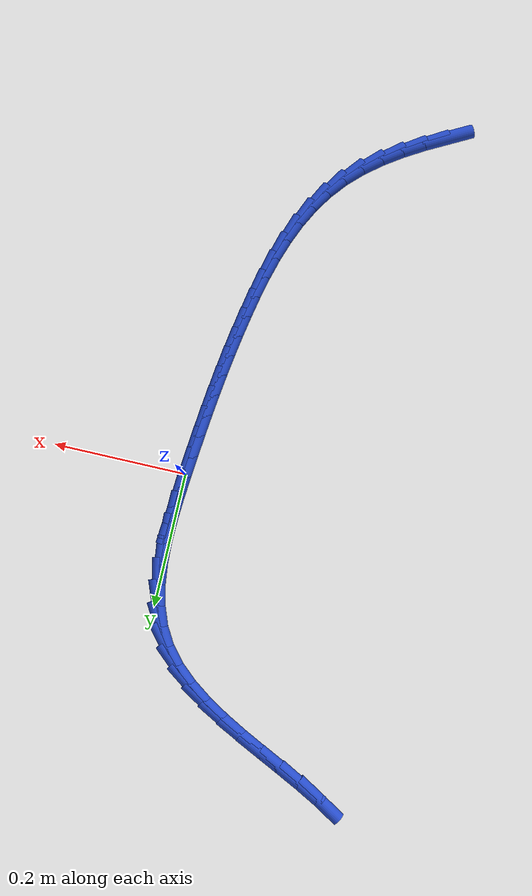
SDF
<sdf version="1.6">
 <world name="default">
  <model name="ground_plane">
   <static>1</static>
   <link name="link">
    <collision name="collision">
     <geometry><plane><normal>0 0 1</normal><size>100 100</size></plane></geometry>
     <surface><friction><ode><mu>100</mu><mu2>50</mu2></ode></friction></surface>
    </collision>
    <visual name="visual">
     <cast_shadows>0</cast_shadows>
     <geometry><plane><normal>0 0 1</normal><size>100 100</size></plane></geometry>
     <material>
      <script><uri>file://media/materials/scripts/gazebo.material</uri><name>Gazebo/WhiteGlow</name></script>
     </material>
    </visual>
   </link>
  </model>
  <model name="line">
   <link name="link_0">
    <pose>-3.469446951953614e-18 6.245004513516506e-17 0.01 0 1.57 1.4901229241210485</pose>
    <collision name="collision">
     <geometry><cylinder><radius>0.01</radius><length>0.08</length></cylinder></geometry>
    </collision>
    <visual name="visual">
     <material>
      <script><name>Gazebo/Blue</name><uri>file://media/materials/scripts/gazebo.material</uri></script>
     </material>
     <geometry><cylinder><radius>0.01</radius><length>0.08</length></cylinder></geometry>
    </visual>
   </link>
   <link name="link_1">
    <pose>0.0027077996021664143 0.033492113431842434 0.01 0 1.57 1.5123215696676704</pose>
    <collision name="collision">
     <geometry><cylinder><radius>0.01</radius><length>0.08</length></cylinder></geometry>
    </collision>
    <visual name="visual">
     <material>
      <script><name>Gazebo/Blue</name><uri>file://media/materials/scripts/gazebo.material</uri></script>
     </material>
     <geometry><cylinder><radius>0.01</radius><length>0.08</length></cylinder></geometry>
    </visual>
   </link>
   <link name="link_2">
    <pose>0.004687725133957794 0.0673130040705249 0.01 0 1.57 1.552191958306774</pose>
    <collision name="collision">
     <geometry><cylinder><radius>0.01</radius><length>0.08</length></cylinder></geometry>
    </collision>
    <visual name="visual">
     <material>
      <script><name>Gazebo/Blue</name><uri>file://media/materials/scripts/gazebo.material</uri></script>
     </material>
     <geometry><cylinder><radius>0.01</radius><length>0.08</length></cylinder></geometry>
    </visual>
   </link>
   <link name="link_3">
    <pose>0.005314771219777069 0.10101335458900262 0.01 0 1.57 -1.5300456229993817</pose>
    <collision name="collision">
     <geometry><cylinder><radius>0.01</radius><length>0.08</length></cylinder></geometry>
    </collision>
    <visual name="visual">
     <material>
      <script><name>Gazebo/Blue</name><uri>file://media/materials/scripts/gazebo.material</uri></script>
     </material>
     <geometry><cylinder><radius>0.01</radius><length>0.08</length></cylinder></geometry>
    </visual>
   </link>
   <link name="link_4">
    <pose>0.003963932484027174 0.13414384766023082 0.01 0 1.57 -1.4482872086285352</pose>
    <collision name="collision">
     <geometry><cylinder><radius>0.01</radius><length>0.08</length></cylinder></geometry>
    </collision>
    <visual name="visual">
     <material>
      <script><name>Gazebo/Blue</name><uri>file://media/materials/scripts/gazebo.material</uri></script>
     </material>
     <geometry><cylinder><radius>0.01</radius><length>0.08</length></cylinder></geometry>
    </visual>
   </link>
   <link name="link_5">
    <pose>1.0203551111035575e-05 0.16625516595716458 0.01 0 1.57 -1.34058564515871</pose>
    <collision name="collision">
     <geometry><cylinder><radius>0.01</radius><length>0.08</length></cylinder></geometry>
    </collision>
    <visual name="visual">
     <material>
      <script><name>Gazebo/Blue</name><uri>file://media/materials/scripts/gazebo.material</uri></script>
     </material>
     <geometry><cylinder><radius>0.01</radius><length>0.08</length></cylinder></geometry>
    </visual>
   </link>
   <link name="link_6">
    <pose>-0.00717142095456841 0.19689799215275902 0.01 0 1.57 -1.2040337244505515</pose>
    <collision name="collision">
     <geometry><cylinder><radius>0.01</radius><length>0.08</length></cylinder></geometry>
    </collision>
    <visual name="visual">
     <material>
      <script><name>Gazebo/Blue</name><uri>file://media/materials/scripts/gazebo.material</uri></script>
     </material>
     <geometry><cylinder><radius>0.01</radius><length>0.08</length></cylinder></geometry>
    </visual>
   </link>
   <link name="link_7">
    <pose>-0.018205946408608238 0.22562300891996945 0.01 0 1.57 -1.0388727572746694</pose>
    <collision name="collision">
     <geometry><cylinder><radius>0.01</radius><length>0.08</length></cylinder></geometry>
    </collision>
    <visual name="visual">
     <material>
      <script><name>Gazebo/Blue</name><uri>file://media/materials/scripts/gazebo.material</uri></script>
     </material>
     <geometry><cylinder><radius>0.01</radius><length>0.08</length></cylinder></geometry>
    </visual>
   </link>
   <link name="link_8">
    <pose>-0.0337178486407541 0.2519812085701402 0.01 0 1.57 -0.8640773350608283</pose>
    <collision name="collision">
     <geometry><cylinder><radius>0.01</radius><length>0.08</length></cylinder></geometry>
    </collision>
    <visual name="visual">
     <material>
      <script><name>Gazebo/Blue</name><uri>file://media/materials/scripts/gazebo.material</uri></script>
     </material>
     <geometry><cylinder><radius>0.01</radius><length>0.08</length></cylinder></geometry>
    </visual>
   </link>
   <link name="link_9">
    <pose>-0.0539898748152464 0.27572340050943794 0.01 0 1.57 -0.7207456461678292</pose>
    <collision name="collision">
     <geometry><cylinder><radius>0.01</radius><length>0.08</length></cylinder></geometry>
    </collision>
    <visual name="visual">
     <material>
      <script><name>Gazebo/Blue</name><uri>file://media/materials/scripts/gazebo.material</uri></script>
     </material>
     <geometry><cylinder><radius>0.01</radius><length>0.08</length></cylinder></geometry>
    </visual>
   </link>
   <link name="link_10">
    <pose>-0.07837571957989971 0.29714363383536285 0.01 0 1.57 -0.613045753282592</pose>
    <collision name="collision">
     <geometry><cylinder><radius>0.01</radius><length>0.08</length></cylinder></geometry>
    </collision>
    <visual name="visual">
     <material>
      <script><name>Gazebo/Blue</name><uri>file://media/materials/scripts/gazebo.material</uri></script>
     </material>
     <geometry><cylinder><radius>0.01</radius><length>0.08</length></cylinder></geometry>
    </visual>
   </link>
   <link name="link_11">
    <pose>-0.10607268852153606 0.3166274021479808 0.01 0 1.57 -0.5357706391768827</pose>
    <collision name="collision">
     <geometry><cylinder><radius>0.01</radius><length>0.08</length></cylinder></geometry>
    </collision>
    <visual name="visual">
     <material>
      <script><name>Gazebo/Blue</name><uri>file://media/materials/scripts/gazebo.material</uri></script>
     </material>
     <geometry><cylinder><radius>0.01</radius><length>0.08</length></cylinder></geometry>
    </visual>
   </link>
   <link name="link_12">
    <pose>-0.13627808722697748 0.3345601990473574 0.01 0 1.57 -0.4837902180100879</pose>
    <collision name="collision">
     <geometry><cylinder><radius>0.01</radius><length>0.08</length></cylinder></geometry>
    </collision>
    <visual name="visual">
     <material>
      <script><name>Gazebo/Blue</name><uri>file://media/materials/scripts/gazebo.material</uri></script>
     </material>
     <geometry><cylinder><radius>0.01</radius><length>0.08</length></cylinder></geometry>
    </visual>
   </link>
   <link name="link_13">
    <pose>-0.168189221283046 0.35132751813355845 0.01 0 1.57 -0.45336189439639357</pose>
    <collision name="collision">
     <geometry><cylinder><radius>0.01</radius><length>0.08</length></cylinder></geometry>
    </collision>
    <visual name="visual">
     <material>
      <script><name>Gazebo/Blue</name><uri>file://media/materials/scripts/gazebo.material</uri></script>
     </material>
     <geometry><cylinder><radius>0.01</radius><length>0.08</length></cylinder></geometry>
    </visual>
   </link>
   <link name="link_14">
    <pose>-0.20100339627656347 0.3673148530066496 0.01 0 1.57 -0.44241777368802937</pose>
    <collision name="collision">
     <geometry><cylinder><radius>0.01</radius><length>0.08</length></cylinder></geometry>
    </collision>
    <visual name="visual">
     <material>
      <script><name>Gazebo/Blue</name><uri>file://media/materials/scripts/gazebo.material</uri></script>
     </material>
     <geometry><cylinder><radius>0.01</radius><length>0.08</length></cylinder></geometry>
    </visual>
   </link>
   <link name="link_15">
    <pose>-0.23391791779435206 0.3829076972666967 0.01 0 1.57 -0.45059369855419107</pose>
    <collision name="collision">
     <geometry><cylinder><radius>0.01</radius><length>0.08</length></cylinder></geometry>
    </collision>
    <visual name="visual">
     <material>
      <script><name>Gazebo/Blue</name><uri>file://media/materials/scripts/gazebo.material</uri></script>
     </material>
     <geometry><cylinder><radius>0.01</radius><length>0.08</length></cylinder></geometry>
    </visual>
   </link>
   <link name="link_16">
    <pose>-0.2661300914232338 0.3984915445137655 0.01 0 1.57 -0.4793304913111755</pose>
    <collision name="collision">
     <geometry><cylinder><radius>0.01</radius><length>0.08</length></cylinder></geometry>
    </collision>
    <visual name="visual">
     <material>
      <script><name>Gazebo/Blue</name><uri>file://media/materials/scripts/gazebo.material</uri></script>
     </material>
     <geometry><cylinder><radius>0.01</radius><length>0.08</length></cylinder></geometry>
    </visual>
   </link>
   <link name="link_17">
    <pose>-0.2968372227500305 0.4144518883479217 0.01 0 1.57 -0.5321636464782197</pose>
    <collision name="collision">
     <geometry><cylinder><radius>0.01</radius><length>0.08</length></cylinder></geometry>
    </collision>
    <visual name="visual">
     <material>
      <script><name>Gazebo/Blue</name><uri>file://media/materials/scripts/gazebo.material</uri></script>
     </material>
     <geometry><cylinder><radius>0.01</radius><length>0.08</length></cylinder></geometry>
    </visual>
   </link>
   <link name="link_229">
    <pose>-0.26795239321500874 -0.5865382943505846 0.01 0 1.57 0.49551054702155944</pose>
    <collision name="collision">
     <geometry><cylinder><radius>0.01</radius><length>0.08</length></cylinder></geometry>
    </collision>
    <visual name="visual">
     <material>
      <script><name>Gazebo/Blue</name><uri>file://media/materials/scripts/gazebo.material</uri></script>
     </material>
     <geometry><cylinder><radius>0.01</radius><length>0.08</length></cylinder></geometry>
    </visual>
   </link>
   <link name="link_230">
    <pose>-0.23646685208008741 -0.569520756124031 0.01 0 1.57 0.5428706893435163</pose>
    <collision name="collision">
     <geometry><cylinder><radius>0.01</radius><length>0.08</length></cylinder></geometry>
    </collision>
    <visual name="visual">
     <material>
      <script><name>Gazebo/Blue</name><uri>file://media/materials/scripts/gazebo.material</uri></script>
     </material>
     <geometry><cylinder><radius>0.01</radius><length>0.08</length></cylinder></geometry>
    </visual>
   </link>
   <link name="link_231">
    <pose>-0.20645617123470802 -0.5514141559428751 0.01 0 1.57 0.6047297970872947</pose>
    <collision name="collision">
     <geometry><cylinder><radius>0.01</radius><length>0.08</length></cylinder></geometry>
    </collision>
    <visual name="visual">
     <material>
      <script><name>Gazebo/Blue</name><uri>file://media/materials/scripts/gazebo.material</uri></script>
     </material>
     <geometry><cylinder><radius>0.01</radius><length>0.08</length></cylinder></geometry>
    </visual>
   </link>
   <link name="link_232">
    <pose>-0.17831905982688606 -0.5319685153052018 0.01 0 1.57 0.6827701156418449</pose>
    <collision name="collision">
     <geometry><cylinder><radius>0.01</radius><length>0.08</length></cylinder></geometry>
    </collision>
    <visual name="visual">
     <material>
      <script><name>Gazebo/Blue</name><uri>file://media/materials/scripts/gazebo.material</uri></script>
     </material>
     <geometry><cylinder><radius>0.01</radius><length>0.08</length></cylinder></geometry>
    </visual>
   </link>
   <link name="link_233">
    <pose>-0.15245422700463726 -0.5109338557090951 0.01 0 1.57 0.7784478652145016</pose>
    <collision name="collision">
     <geometry><cylinder><radius>0.01</radius><length>0.08</length></cylinder></geometry>
    </collision>
    <visual name="visual">
     <material>
      <script><name>Gazebo/Blue</name><uri>file://media/materials/scripts/gazebo.material</uri></script>
     </material>
     <geometry><cylinder><radius>0.01</radius><length>0.08</length></cylinder></geometry>
    </visual>
   </link>
   <link name="link_234">
    <pose>-0.1292603819159771 -0.48806019865264016 0.01 0 1.57 0.8903821291777613</pose>
    <collision name="collision">
     <geometry><cylinder><radius>0.01</radius><length>0.08</length></cylinder></geometry>
    </collision>
    <visual name="visual">
     <material>
      <script><name>Gazebo/Blue</name><uri>file://media/materials/scripts/gazebo.material</uri></script>
     </material>
     <geometry><cylinder><radius>0.01</radius><length>0.08</length></cylinder></geometry>
    </visual>
   </link>
   <link name="link_235">
    <pose>-0.10908790816109687 -0.4631358062334021 0.01 0 1.57 0.9999303078231081</pose>
    <collision name="collision">
     <geometry><cylinder><radius>0.01</radius><length>0.08</length></cylinder></geometry>
    </collision>
    <visual name="visual">
     <material>
      <script><name>Gazebo/Blue</name><uri>file://media/materials/scripts/gazebo.material</uri></script>
     </material>
     <geometry><cylinder><radius>0.01</radius><length>0.08</length></cylinder></geometry>
    </visual>
   </link>
   <link name="link_236">
    <pose>-0.09185060641114141 -0.4362944139823908 0.01 0 1.57 1.095976390840506</pose>
    <collision name="collision">
     <geometry><cylinder><radius>0.01</radius><length>0.08</length></cylinder></geometry>
    </collision>
    <visual name="visual">
     <material>
      <script><name>Gazebo/Blue</name><uri>file://media/materials/scripts/gazebo.material</uri></script>
     </material>
     <geometry><cylinder><radius>0.01</radius><length>0.08</length></cylinder></geometry>
    </visual>
   </link>
   <link name="link_237">
    <pose>-0.07723052888879715 -0.4078531428239921 0.01 0 1.57 1.1777659759505252</pose>
    <collision name="collision">
     <geometry><cylinder><radius>0.01</radius><length>0.08</length></cylinder></geometry>
    </collision>
    <visual name="visual">
     <material>
      <script><name>Gazebo/Blue</name><uri>file://media/materials/scripts/gazebo.material</uri></script>
     </material>
     <geometry><cylinder><radius>0.01</radius><length>0.08</length></cylinder></geometry>
    </visual>
   </link>
   <link name="link_238">
    <pose>-0.06490759497542362 -0.3781308014261265 0.01 0 1.57 1.245598413950686</pose>
    <collision name="collision">
     <geometry><cylinder><radius>0.01</radius><length>0.08</length></cylinder></geometry>
    </collision>
    <visual name="visual">
     <material>
      <script><name>Gazebo/Blue</name><uri>file://media/materials/scripts/gazebo.material</uri></script>
     </material>
     <geometry><cylinder><radius>0.01</radius><length>0.08</length></cylinder></geometry>
    </visual>
   </link>
   <link name="link_239">
    <pose>-0.05456172405238039 -0.34744619845671504 0.01 0 1.57 1.3002451060711702</pose>
    <collision name="collision">
     <geometry><cylinder><radius>0.01</radius><length>0.08</length></cylinder></geometry>
    </collision>
    <visual name="visual">
     <material>
      <script><name>Gazebo/Blue</name><uri>file://media/materials/scripts/gazebo.material</uri></script>
     </material>
     <geometry><cylinder><radius>0.01</radius><length>0.08</length></cylinder></geometry>
    </visual>
   </link>
   <link name="link_240">
    <pose>-0.04587283550102726 -0.31611814258367976 0.01 0 1.57 1.342572636463968</pose>
    <collision name="collision">
     <geometry><cylinder><radius>0.01</radius><length>0.08</length></cylinder></geometry>
    </collision>
    <visual name="visual">
     <material>
      <script><name>Gazebo/Blue</name><uri>file://media/materials/scripts/gazebo.material</uri></script>
     </material>
     <geometry><cylinder><radius>0.01</radius><length>0.08</length></cylinder></geometry>
    </visual>
   </link>
   <link name="link_241">
    <pose>-0.038520848702723307 -0.2844654424749396 0.01 0 1.57 1.3732957261301524</pose>
    <collision name="collision">
     <geometry><cylinder><radius>0.01</radius><length>0.08</length></cylinder></geometry>
    </collision>
    <visual name="visual">
     <material>
      <script><name>Gazebo/Blue</name><uri>file://media/materials/scripts/gazebo.material</uri></script>
     </material>
     <geometry><cylinder><radius>0.01</radius><length>0.08</length></cylinder></geometry>
    </visual>
   </link>
   <link name="link_242">
    <pose>-0.032185683038828385 -0.25280690679841644 0.01 0 1.57 1.3939462561173535</pose>
    <collision name="collision">
     <geometry><cylinder><radius>0.01</radius><length>0.08</length></cylinder></geometry>
    </collision>
    <visual name="visual">
     <material>
      <script><name>Gazebo/Blue</name><uri>file://media/materials/scripts/gazebo.material</uri></script>
     </material>
     <geometry><cylinder><radius>0.01</radius><length>0.08</length></cylinder></geometry>
    </visual>
   </link>
   <link name="link_243">
    <pose>-0.026574634511791276 -0.22141065562120252 0.01 0 1.57 1.4111937512260753</pose>
    <collision name="collision">
     <geometry><cylinder><radius>0.01</radius><length>0.08</length></cylinder></geometry>
    </collision>
    <visual name="visual">
     <material>
      <script><name>Gazebo/Blue</name><uri>file://media/materials/scripts/gazebo.material</uri></script>
     </material>
     <geometry><cylinder><radius>0.01</radius><length>0.08</length></cylinder></geometry>
    </visual>
   </link>
   <link name="link_244">
    <pose>-0.021557634020343053 -0.19024368582533427 0.01 0 1.57 1.4272288019652715</pose>
    <collision name="collision">
     <geometry><cylinder><radius>0.01</radius><length>0.08</length></cylinder></geometry>
    </collision>
    <visual name="visual">
     <material>
      <script><name>Gazebo/Blue</name><uri>file://media/materials/scripts/gazebo.material</uri></script>
     </material>
     <geometry><cylinder><radius>0.01</radius><length>0.08</length></cylinder></geometry>
    </visual>
   </link>
   <link name="link_245">
    <pose>-0.01706443363057449 -0.15916223368205093 0.01 0 1.57 1.4417937861950036</pose>
    <collision name="collision">
     <geometry><cylinder><radius>0.01</radius><length>0.08</length></cylinder></geometry>
    </collision>
    <visual name="visual">
     <material>
      <script><name>Gazebo/Blue</name><uri>file://media/materials/scripts/gazebo.material</uri></script>
     </material>
     <geometry><cylinder><radius>0.01</radius><length>0.08</length></cylinder></geometry>
    </visual>
   </link>
   <link name="link_246">
    <pose>-0.01302487810800196 -0.12802236382694077 0.01 0 1.57 1.4546712817833307</pose>
    <collision name="collision">
     <geometry><cylinder><radius>0.01</radius><length>0.08</length></cylinder></geometry>
    </collision>
    <visual name="visual">
     <material>
      <script><name>Gazebo/Blue</name><uri>file://media/materials/scripts/gazebo.material</uri></script>
     </material>
     <geometry><cylinder><radius>0.01</radius><length>0.08</length></cylinder></geometry>
    </visual>
   </link>
   <link name="link_247">
    <pose>-0.009368812218141866 -0.09668014089559222 0.01 0 1.57 1.4656978327649821</pose>
    <collision name="collision">
     <geometry><cylinder><radius>0.01</radius><length>0.08</length></cylinder></geometry>
    </collision>
    <visual name="visual">
     <material>
      <script><name>Gazebo/Blue</name><uri>file://media/materials/scripts/gazebo.material</uri></script>
     </material>
     <geometry><cylinder><radius>0.01</radius><length>0.08</length></cylinder></geometry>
    </visual>
   </link>
   <link name="link_248">
    <pose>-0.006026080726510583 -0.06499162952359368 0.01 0 1.57 1.474769577538699</pose>
    <collision name="collision">
     <geometry><cylinder><radius>0.01</radius><length>0.08</length></cylinder></geometry>
    </collision>
    <visual name="visual">
     <material>
      <script><name>Gazebo/Blue</name><uri>file://media/materials/scripts/gazebo.material</uri></script>
     </material>
     <geometry><cylinder><radius>0.01</radius><length>0.08</length></cylinder></geometry>
    </visual>
   </link>
   <link name="link_249">
    <pose>-0.0029265283986244996 -0.03281289434653342 0.01 0 1.57 1.4818433243254825</pose>
    <collision name="collision">
     <geometry><cylinder><radius>0.01</radius><length>0.08</length></cylinder></geometry>
    </collision>
    <visual name="visual">
     <material>
      <script><name>Gazebo/Blue</name><uri>file://media/materials/scripts/gazebo.material</uri></script>
     </material>
     <geometry><cylinder><radius>0.01</radius><length>0.08</length></cylinder></geometry>
    </visual>
   </link>
   <link name="link_250">
    <pose>8.673617379884035e-19 1.1102230246251565e-16 0.01 0 1.57 1.4869334484161552</pose>
    <collision name="collision">
     <geometry><cylinder><radius>0.01</radius><length>0.08</length></cylinder></geometry>
    </collision>
    <visual name="visual">
     <material>
      <script><name>Gazebo/Blue</name><uri>file://media/materials/scripts/gazebo.material</uri></script>
     </material>
     <geometry><cylinder><radius>0.01</radius><length>0.08</length></cylinder></geometry>
    </visual>
   </link>
   <link name="link_251">
    <pose>0.002823659703846535 0.03359098888041858 0.01 0 1.57 1.4901054336566912</pose>
    <collision name="collision">
     <geometry><cylinder><radius>0.01</radius><length>0.08</length></cylinder></geometry>
    </collision>
    <visual name="visual">
     <material>
      <script><name>Gazebo/Blue</name><uri>file://media/materials/scripts/gazebo.material</uri></script>
     </material>
     <geometry><cylinder><radius>0.01</radius><length>0.08</length></cylinder></geometry>
    </visual>
   </link>
   <link name="link_252">
    <pose>0.005614605947398715 0.06810400765913366 0.01 0 1.57 1.4885407057158033</pose>
    <collision name="collision">
     <geometry><cylinder><radius>0.01</radius><length>0.08</length></cylinder></geometry>
    </collision>
    <visual name="visual">
     <material>
      <script><name>Gazebo/Blue</name><uri>file://media/materials/scripts/gazebo.material</uri></script>
     </material>
     <geometry><cylinder><radius>0.01</radius><length>0.08</length></cylinder></geometry>
    </visual>
   </link>
  </model>
 </world>
</sdf>
